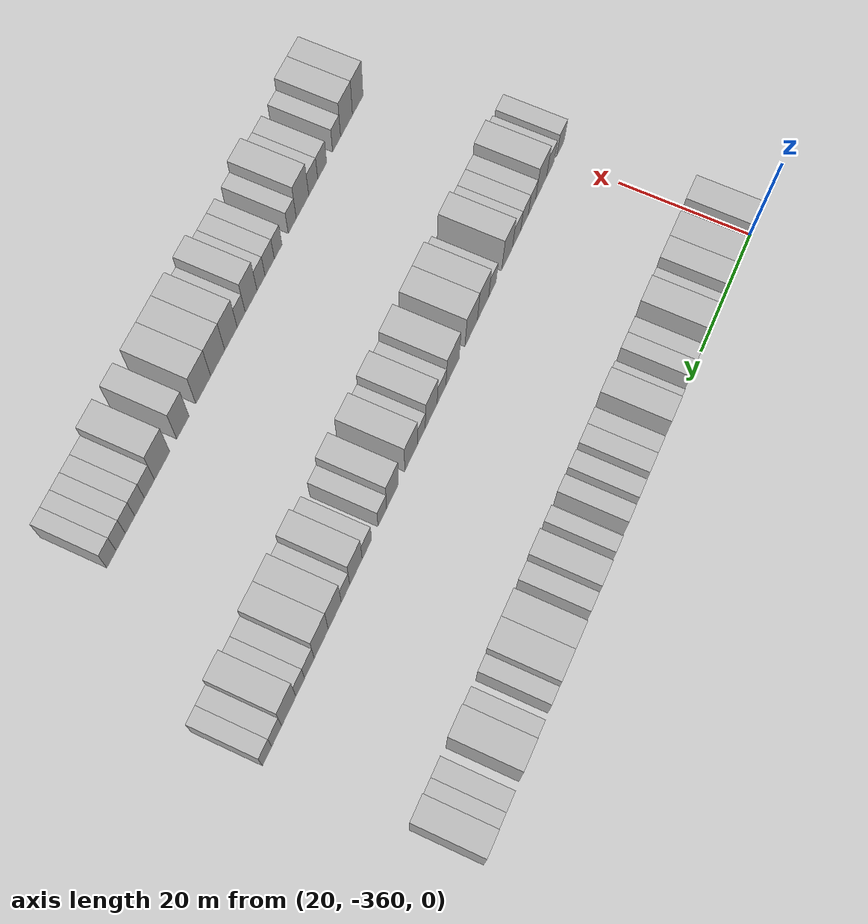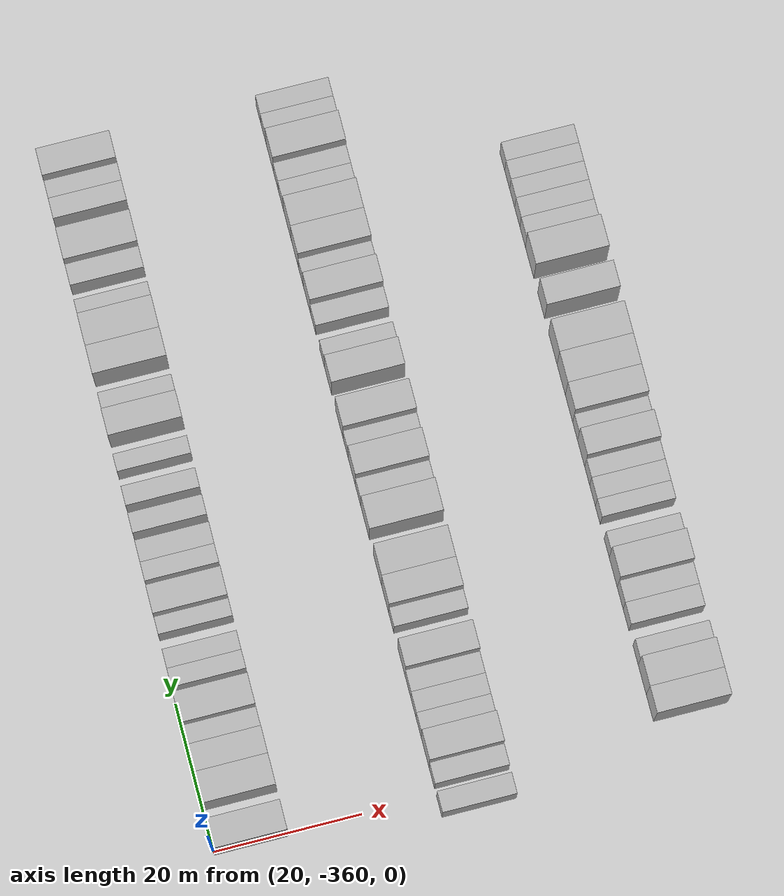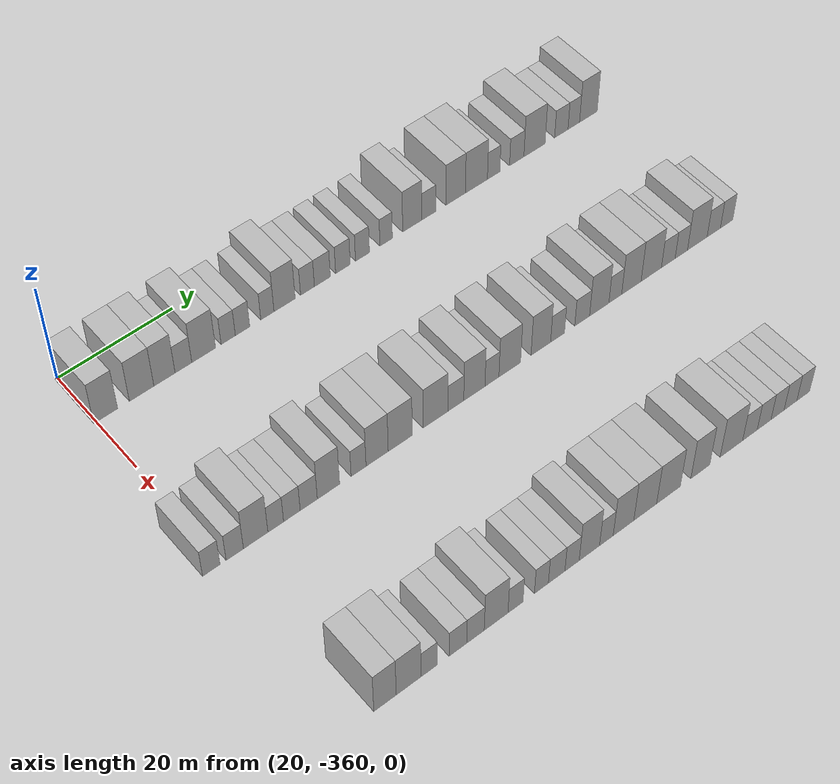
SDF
<sdf version="1.6">
 <world name="default">
  <model name="building_26">
   <static>1</static>
   <pose>25.0000 -358.4332 0 0.000000 0.000000 0.000000</pose>
   <link name="link">
    <pose>0 0 4.50 0 0 0</pose>
    <collision name="collision"><geometry><box><size>10.0000 4.0277 9.0000</size></box></geometry></collision>
    <visual name="visual">
     <cast_shadows>0</cast_shadows>
     <geometry><box><size>10.0000 4.0277 9.0000</size></box></geometry>
     <material>
      <script>
       <uri>model://HANNAS_wall/materials/scripts</uri>
       <uri>model://HANNAS_wall/materials/textures</uri>
       <name>vrc/HANNAS_wall</name>
      </script>
     </material>
    </visual>
   </link>
  </model>
  <model name="building_27">
   <static>1</static>
   <pose>25.0000 -352.3200 0 0.000000 0.000000 0.000000</pose>
   <link name="link">
    <pose>0 0 4.50 0 0 0</pose>
    <collision name="collision"><geometry><box><size>10.0000 4.1987 9.0000</size></box></geometry></collision>
    <visual name="visual">
     <cast_shadows>0</cast_shadows>
     <geometry><box><size>10.0000 4.1987 9.0000</size></box></geometry>
     <material>
      <script>
       <uri>model://HANNAS_wall/materials/scripts</uri>
       <uri>model://HANNAS_wall/materials/textures</uri>
       <name>vrc/HANNAS_wall</name>
      </script>
     </material>
    </visual>
   </link>
  </model>
  <model name="building_28">
   <static>1</static>
   <pose>25.0000 -348.3861 0 0.000000 0.000000 0.000000</pose>
   <link name="link">
    <pose>0 0 4.50 0 0 0</pose>
    <collision name="collision"><geometry><box><size>10.0000 3.6690 9.0000</size></box></geometry></collision>
    <visual name="visual">
     <cast_shadows>0</cast_shadows>
     <geometry><box><size>10.0000 3.6690 9.0000</size></box></geometry>
     <material>
      <script>
       <uri>model://HANNAS_wall/materials/scripts</uri>
       <uri>model://HANNAS_wall/materials/textures</uri>
       <name>vrc/HANNAS_wall</name>
      </script>
     </material>
    </visual>
   </link>
  </model>
  <model name="building_29">
   <static>1</static>
   <pose>25.0000 -345.0857 0 0.000000 0.000000 0.000000</pose>
   <link name="link">
    <pose>0 0 3.00 0 0 0</pose>
    <collision name="collision"><geometry><box><size>10.0000 2.9317 6.0000</size></box></geometry></collision>
    <visual name="visual">
     <cast_shadows>0</cast_shadows>
     <geometry><box><size>10.0000 2.9317 6.0000</size></box></geometry>
     <material>
      <script>
       <uri>model://HANNAS_wall/materials/scripts</uri>
       <uri>model://HANNAS_wall/materials/textures</uri>
       <name>vrc/HANNAS_wall</name>
      </script>
     </material>
    </visual>
   </link>
  </model>
  <model name="building_30">
   <static>1</static>
   <pose>25.0000 -341.5307 0 0.000000 0.000000 0.000000</pose>
   <link name="link">
    <pose>0 0 4.50 0 0 0</pose>
    <collision name="collision"><geometry><box><size>10.0000 4.1784 9.0000</size></box></geometry></collision>
    <visual name="visual">
     <cast_shadows>0</cast_shadows>
     <geometry><box><size>10.0000 4.1784 9.0000</size></box></geometry>
     <material>
      <script>
       <uri>model://HANNAS_wall/materials/scripts</uri>
       <uri>model://HANNAS_wall/materials/textures</uri>
       <name>vrc/HANNAS_wall</name>
      </script>
     </material>
    </visual>
   </link>
  </model>
  <model name="building_31">
   <static>1</static>
   <pose>25.0000 -337.1726 0 0.000000 0.000000 0.000000</pose>
   <link name="link">
    <pose>0 0 3.00 0 0 0</pose>
    <collision name="collision"><geometry><box><size>10.0000 2.5376 6.0000</size></box></geometry></collision>
    <visual name="visual">
     <cast_shadows>0</cast_shadows>
     <geometry><box><size>10.0000 2.5376 6.0000</size></box></geometry>
     <material>
      <script>
       <uri>model://HANNAS_wall/materials/scripts</uri>
       <uri>model://HANNAS_wall/materials/textures</uri>
       <name>vrc/HANNAS_wall</name>
      </script>
     </material>
    </visual>
   </link>
  </model>
  <model name="building_32">
   <static>1</static>
   <pose>25.0000 -334.6079 0 0.000000 0.000000 0.000000</pose>
   <link name="link">
    <pose>0 0 3.00 0 0 0</pose>
    <collision name="collision"><geometry><box><size>10.0000 2.5919 6.0000</size></box></geometry></collision>
    <visual name="visual">
     <cast_shadows>0</cast_shadows>
     <geometry><box><size>10.0000 2.5919 6.0000</size></box></geometry>
     <material>
      <script>
       <uri>model://HANNAS_wall/materials/scripts</uri>
       <uri>model://HANNAS_wall/materials/textures</uri>
       <name>vrc/HANNAS_wall</name>
      </script>
     </material>
    </visual>
   </link>
  </model>
  <model name="building_33">
   <static>1</static>
   <pose>25.0000 -330.1112 0 0.000000 0.000000 0.000000</pose>
   <link name="link">
    <pose>0 0 3.00 0 0 0</pose>
    <collision name="collision"><geometry><box><size>10.0000 2.4014 6.0000</size></box></geometry></collision>
    <visual name="visual">
     <cast_shadows>0</cast_shadows>
     <geometry><box><size>10.0000 2.4014 6.0000</size></box></geometry>
     <material>
      <script>
       <uri>model://HANNAS_wall/materials/scripts</uri>
       <uri>model://HANNAS_wall/materials/textures</uri>
       <name>vrc/HANNAS_wall</name>
      </script>
     </material>
    </visual>
   </link>
  </model>
  <model name="building_34">
   <static>1</static>
   <pose>25.0000 -326.9697 0 0.000000 0.000000 0.000000</pose>
   <link name="link">
    <pose>0 0 4.50 0 0 0</pose>
    <collision name="collision"><geometry><box><size>10.0000 3.8817 9.0000</size></box></geometry></collision>
    <visual name="visual">
     <cast_shadows>0</cast_shadows>
     <geometry><box><size>10.0000 3.8817 9.0000</size></box></geometry>
     <material>
      <script>
       <uri>model://HANNAS_wall/materials/scripts</uri>
       <uri>model://HANNAS_wall/materials/textures</uri>
       <name>vrc/HANNAS_wall</name>
      </script>
     </material>
    </visual>
   </link>
  </model>
  <model name="building_35">
   <static>1</static>
   <pose>25.0000 -322.7436 0 0.000000 0.000000 0.000000</pose>
   <link name="link">
    <pose>0 0 3.00 0 0 0</pose>
    <collision name="collision"><geometry><box><size>10.0000 2.5705 6.0000</size></box></geometry></collision>
    <visual name="visual">
     <cast_shadows>0</cast_shadows>
     <geometry><box><size>10.0000 2.5705 6.0000</size></box></geometry>
     <material>
      <script>
       <uri>model://HANNAS_wall/materials/scripts</uri>
       <uri>model://HANNAS_wall/materials/textures</uri>
       <name>vrc/HANNAS_wall</name>
      </script>
     </material>
    </visual>
   </link>
  </model>
  <model name="building_36">
   <static>1</static>
   <pose>25.0000 -319.9724 0 0.000000 0.000000 0.000000</pose>
   <link name="link">
    <pose>0 0 3.00 0 0 0</pose>
    <collision name="collision"><geometry><box><size>10.0000 2.9718 6.0000</size></box></geometry></collision>
    <visual name="visual">
     <cast_shadows>0</cast_shadows>
     <geometry><box><size>10.0000 2.9718 6.0000</size></box></geometry>
     <material>
      <script>
       <uri>model://HANNAS_wall/materials/scripts</uri>
       <uri>model://HANNAS_wall/materials/textures</uri>
       <name>vrc/HANNAS_wall</name>
      </script>
     </material>
    </visual>
   </link>
  </model>
  <model name="building_37">
   <static>1</static>
   <pose>25.0000 -316.1096 0 0.000000 0.000000 0.000000</pose>
   <link name="link">
    <pose>0 0 3.00 0 0 0</pose>
    <collision name="collision"><geometry><box><size>10.0000 2.7538 6.0000</size></box></geometry></collision>
    <visual name="visual">
     <cast_shadows>0</cast_shadows>
     <geometry><box><size>10.0000 2.7538 6.0000</size></box></geometry>
     <material>
      <script>
       <uri>model://HANNAS_wall/materials/scripts</uri>
       <uri>model://HANNAS_wall/materials/textures</uri>
       <name>vrc/HANNAS_wall</name>
      </script>
     </material>
    </visual>
   </link>
  </model>
  <model name="building_38">
   <static>1</static>
   <pose>25.0000 -312.4025 0 0.000000 0.000000 0.000000</pose>
   <link name="link">
    <pose>0 0 3.00 0 0 0</pose>
    <collision name="collision"><geometry><box><size>10.0000 2.6604 6.0000</size></box></geometry></collision>
    <visual name="visual">
     <cast_shadows>0</cast_shadows>
     <geometry><box><size>10.0000 2.6604 6.0000</size></box></geometry>
     <material>
      <script>
       <uri>model://HANNAS_wall/materials/scripts</uri>
       <uri>model://HANNAS_wall/materials/textures</uri>
       <name>vrc/HANNAS_wall</name>
      </script>
     </material>
    </visual>
   </link>
  </model>
  <model name="building_39">
   <static>1</static>
   <pose>25.0000 -307.8670 0 0.000000 0.000000 0.000000</pose>
   <link name="link">
    <pose>0 0 3.00 0 0 0</pose>
    <collision name="collision"><geometry><box><size>10.0000 2.4106 6.0000</size></box></geometry></collision>
    <visual name="visual">
     <cast_shadows>0</cast_shadows>
     <geometry><box><size>10.0000 2.4106 6.0000</size></box></geometry>
     <material>
      <script>
       <uri>model://HANNAS_wall/materials/scripts</uri>
       <uri>model://HANNAS_wall/materials/textures</uri>
       <name>vrc/HANNAS_wall</name>
      </script>
     </material>
    </visual>
   </link>
  </model>
  <model name="building_40">
   <static>1</static>
   <pose>25.0000 -302.8140 0 0.000000 0.000000 0.000000</pose>
   <link name="link">
    <pose>0 0 4.50 0 0 0</pose>
    <collision name="collision"><geometry><box><size>10.0000 3.6954 9.0000</size></box></geometry></collision>
    <visual name="visual">
     <cast_shadows>0</cast_shadows>
     <geometry><box><size>10.0000 3.6954 9.0000</size></box></geometry>
     <material>
      <script>
       <uri>model://HANNAS_wall/materials/scripts</uri>
       <uri>model://HANNAS_wall/materials/textures</uri>
       <name>vrc/HANNAS_wall</name>
      </script>
     </material>
    </visual>
   </link>
  </model>
  <model name="building_41">
   <static>1</static>
   <pose>25.0000 -299.5794 0 0.000000 0.000000 0.000000</pose>
   <link name="link">
    <pose>0 0 3.00 0 0 0</pose>
    <collision name="collision"><geometry><box><size>10.0000 2.7738 6.0000</size></box></geometry></collision>
    <visual name="visual">
     <cast_shadows>0</cast_shadows>
     <geometry><box><size>10.0000 2.7738 6.0000</size></box></geometry>
     <material>
      <script>
       <uri>model://HANNAS_wall/materials/scripts</uri>
       <uri>model://HANNAS_wall/materials/textures</uri>
       <name>vrc/HANNAS_wall</name>
      </script>
     </material>
    </visual>
   </link>
  </model>
  <model name="building_42">
   <static>1</static>
   <pose>25.0000 -294.2375 0 0.000000 0.000000 0.000000</pose>
   <link name="link">
    <pose>0 0 4.50 0 0 0</pose>
    <collision name="collision"><geometry><box><size>10.0000 3.9100 9.0000</size></box></geometry></collision>
    <visual name="visual">
     <cast_shadows>0</cast_shadows>
     <geometry><box><size>10.0000 3.9100 9.0000</size></box></geometry>
     <material>
      <script>
       <uri>model://HANNAS_wall/materials/scripts</uri>
       <uri>model://HANNAS_wall/materials/textures</uri>
       <name>vrc/HANNAS_wall</name>
      </script>
     </material>
    </visual>
   </link>
  </model>
  <model name="building_43">
   <static>1</static>
   <pose>25.0000 -290.0535 0 0.000000 0.000000 0.000000</pose>
   <link name="link">
    <pose>0 0 4.50 0 0 0</pose>
    <collision name="collision"><geometry><box><size>10.0000 4.4580 9.0000</size></box></geometry></collision>
    <visual name="visual">
     <cast_shadows>0</cast_shadows>
     <geometry><box><size>10.0000 4.4580 9.0000</size></box></geometry>
     <material>
      <script>
       <uri>model://HANNAS_wall/materials/scripts</uri>
       <uri>model://HANNAS_wall/materials/textures</uri>
       <name>vrc/HANNAS_wall</name>
      </script>
     </material>
    </visual>
   </link>
  </model>
  <model name="building_44">
   <static>1</static>
   <pose>25.0000 -286.5619 0 0.000000 0.000000 0.000000</pose>
   <link name="link">
    <pose>0 0 3.00 0 0 0</pose>
    <collision name="collision"><geometry><box><size>10.0000 2.5252 6.0000</size></box></geometry></collision>
    <visual name="visual">
     <cast_shadows>0</cast_shadows>
     <geometry><box><size>10.0000 2.5252 6.0000</size></box></geometry>
     <material>
      <script>
       <uri>model://HANNAS_wall/materials/scripts</uri>
       <uri>model://HANNAS_wall/materials/textures</uri>
       <name>vrc/HANNAS_wall</name>
      </script>
     </material>
    </visual>
   </link>
  </model>
  <model name="building_45">
   <static>1</static>
   <pose>25.0000 -281.8241 0 0.000000 0.000000 0.000000</pose>
   <link name="link">
    <pose>0 0 3.00 0 0 0</pose>
    <collision name="collision"><geometry><box><size>10.0000 2.9503 6.0000</size></box></geometry></collision>
    <visual name="visual">
     <cast_shadows>0</cast_shadows>
     <geometry><box><size>10.0000 2.9503 6.0000</size></box></geometry>
     <material>
      <script>
       <uri>model://HANNAS_wall/materials/scripts</uri>
       <uri>model://HANNAS_wall/materials/textures</uri>
       <name>vrc/HANNAS_wall</name>
      </script>
     </material>
    </visual>
   </link>
  </model>
  <model name="building_46">
   <static>1</static>
   <pose>25.0000 -278.1454 0 0.000000 0.000000 0.000000</pose>
   <link name="link">
    <pose>0 0 4.50 0 0 0</pose>
    <collision name="collision"><geometry><box><size>10.0000 4.4072 9.0000</size></box></geometry></collision>
    <visual name="visual">
     <cast_shadows>0</cast_shadows>
     <geometry><box><size>10.0000 4.4072 9.0000</size></box></geometry>
     <material>
      <script>
       <uri>model://HANNAS_wall/materials/scripts</uri>
       <uri>model://HANNAS_wall/materials/textures</uri>
       <name>vrc/HANNAS_wall</name>
      </script>
     </material>
    </visual>
   </link>
  </model>
  <model name="building_47">
   <static>1</static>
   <pose>25.0000 -272.5321 0 0.000000 0.000000 0.000000</pose>
   <link name="link">
    <pose>0 0 3.00 0 0 0</pose>
    <collision name="collision"><geometry><box><size>10.0000 2.8193 6.0000</size></box></geometry></collision>
    <visual name="visual">
     <cast_shadows>0</cast_shadows>
     <geometry><box><size>10.0000 2.8193 6.0000</size></box></geometry>
     <material>
      <script>
       <uri>model://HANNAS_wall/materials/scripts</uri>
       <uri>model://HANNAS_wall/materials/textures</uri>
       <name>vrc/HANNAS_wall</name>
      </script>
     </material>
    </visual>
   </link>
  </model>
  <model name="building_48">
   <static>1</static>
   <pose>25.0000 -269.8958 0 0.000000 0.000000 0.000000</pose>
   <link name="link">
    <pose>0 0 3.00 0 0 0</pose>
    <collision name="collision"><geometry><box><size>10.0000 2.4534 6.0000</size></box></geometry></collision>
    <visual name="visual">
     <cast_shadows>0</cast_shadows>
     <geometry><box><size>10.0000 2.4534 6.0000</size></box></geometry>
     <material>
      <script>
       <uri>model://HANNAS_wall/materials/scripts</uri>
       <uri>model://HANNAS_wall/materials/textures</uri>
       <name>vrc/HANNAS_wall</name>
      </script>
     </material>
    </visual>
   </link>
  </model>
  <model name="building_49">
   <static>1</static>
   <pose>25.0000 -266.7919 0 0.000000 0.000000 0.000000</pose>
   <link name="link">
    <pose>0 0 4.50 0 0 0</pose>
    <collision name="collision"><geometry><box><size>10.0000 3.7544 9.0000</size></box></geometry></collision>
    <visual name="visual">
     <cast_shadows>0</cast_shadows>
     <geometry><box><size>10.0000 3.7544 9.0000</size></box></geometry>
     <material>
      <script>
       <uri>model://HANNAS_wall/materials/scripts</uri>
       <uri>model://HANNAS_wall/materials/textures</uri>
       <name>vrc/HANNAS_wall</name>
      </script>
     </material>
    </visual>
   </link>
  </model>
  <model name="building_259">
   <static>1</static>
   <pose>55.0000 -361.6437 0 0.000000 0.000000 0.000000</pose>
   <link name="link">
    <pose>0 0 3.00 0 0 0</pose>
    <collision name="collision"><geometry><box><size>10.0000 2.8631 6.0000</size></box></geometry></collision>
    <visual name="visual">
     <cast_shadows>0</cast_shadows>
     <geometry><box><size>10.0000 2.8631 6.0000</size></box></geometry>
     <material>
      <script>
       <uri>model://HANNAS_wall/materials/scripts</uri>
       <uri>model://HANNAS_wall/materials/textures</uri>
       <name>vrc/HANNAS_wall</name>
      </script>
     </material>
    </visual>
   </link>
  </model>
  <model name="building_260">
   <static>1</static>
   <pose>55.0000 -357.7803 0 0.000000 0.000000 0.000000</pose>
   <link name="link">
    <pose>0 0 3.00 0 0 0</pose>
    <collision name="collision"><geometry><box><size>10.0000 2.8637 6.0000</size></box></geometry></collision>
    <visual name="visual">
     <cast_shadows>0</cast_shadows>
     <geometry><box><size>10.0000 2.8637 6.0000</size></box></geometry>
     <material>
      <script>
       <uri>model://HANNAS_wall/materials/scripts</uri>
       <uri>model://HANNAS_wall/materials/textures</uri>
       <name>vrc/HANNAS_wall</name>
      </script>
     </material>
    </visual>
   </link>
  </model>
  <model name="building_261">
   <static>1</static>
   <pose>55.0000 -354.3079 0 0.000000 0.000000 0.000000</pose>
   <link name="link">
    <pose>0 0 4.50 0 0 0</pose>
    <collision name="collision"><geometry><box><size>10.0000 4.0812 9.0000</size></box></geometry></collision>
    <visual name="visual">
     <cast_shadows>0</cast_shadows>
     <geometry><box><size>10.0000 4.0812 9.0000</size></box></geometry>
     <material>
      <script>
       <uri>model://HANNAS_wall/materials/scripts</uri>
       <uri>model://HANNAS_wall/materials/textures</uri>
       <name>vrc/HANNAS_wall</name>
      </script>
     </material>
    </visual>
   </link>
  </model>
  <model name="building_262">
   <static>1</static>
   <pose>55.0000 -350.9455 0 0.000000 0.000000 0.000000</pose>
   <link name="link">
    <pose>0 0 3.00 0 0 0</pose>
    <collision name="collision"><geometry><box><size>10.0000 2.6436 6.0000</size></box></geometry></collision>
    <visual name="visual">
     <cast_shadows>0</cast_shadows>
     <geometry><box><size>10.0000 2.6436 6.0000</size></box></geometry>
     <material>
      <script>
       <uri>model://HANNAS_wall/materials/scripts</uri>
       <uri>model://HANNAS_wall/materials/textures</uri>
       <name>vrc/HANNAS_wall</name>
      </script>
     </material>
    </visual>
   </link>
  </model>
  <model name="building_263">
   <static>1</static>
   <pose>55.0000 -348.2156 0 0.000000 0.000000 0.000000</pose>
   <link name="link">
    <pose>0 0 3.00 0 0 0</pose>
    <collision name="collision"><geometry><box><size>10.0000 2.8163 6.0000</size></box></geometry></collision>
    <visual name="visual">
     <cast_shadows>0</cast_shadows>
     <geometry><box><size>10.0000 2.8163 6.0000</size></box></geometry>
     <material>
      <script>
       <uri>model://HANNAS_wall/materials/scripts</uri>
       <uri>model://HANNAS_wall/materials/textures</uri>
       <name>vrc/HANNAS_wall</name>
      </script>
     </material>
    </visual>
   </link>
  </model>
  <model name="building_264">
   <static>1</static>
   <pose>55.0000 -345.3443 0 0.000000 0.000000 0.000000</pose>
   <link name="link">
    <pose>0 0 3.00 0 0 0</pose>
    <collision name="collision"><geometry><box><size>10.0000 2.9262 6.0000</size></box></geometry></collision>
    <visual name="visual">
     <cast_shadows>0</cast_shadows>
     <geometry><box><size>10.0000 2.9262 6.0000</size></box></geometry>
     <material>
      <script>
       <uri>model://HANNAS_wall/materials/scripts</uri>
       <uri>model://HANNAS_wall/materials/textures</uri>
       <name>vrc/HANNAS_wall</name>
      </script>
     </material>
    </visual>
   </link>
  </model>
  <model name="building_265">
   <static>1</static>
   <pose>55.0000 -341.9503 0 0.000000 0.000000 0.000000</pose>
   <link name="link">
    <pose>0 0 4.50 0 0 0</pose>
    <collision name="collision"><geometry><box><size>10.0000 3.8618 9.0000</size></box></geometry></collision>
    <visual name="visual">
     <cast_shadows>0</cast_shadows>
     <geometry><box><size>10.0000 3.8618 9.0000</size></box></geometry>
     <material>
      <script>
       <uri>model://HANNAS_wall/materials/scripts</uri>
       <uri>model://HANNAS_wall/materials/textures</uri>
       <name>vrc/HANNAS_wall</name>
      </script>
     </material>
    </visual>
   </link>
  </model>
  <model name="building_266">
   <static>1</static>
   <pose>55.0000 -336.7091 0 0.000000 0.000000 0.000000</pose>
   <link name="link">
    <pose>0 0 3.00 0 0 0</pose>
    <collision name="collision"><geometry><box><size>10.0000 2.6208 6.0000</size></box></geometry></collision>
    <visual name="visual">
     <cast_shadows>0</cast_shadows>
     <geometry><box><size>10.0000 2.6208 6.0000</size></box></geometry>
     <material>
      <script>
       <uri>model://HANNAS_wall/materials/scripts</uri>
       <uri>model://HANNAS_wall/materials/textures</uri>
       <name>vrc/HANNAS_wall</name>
      </script>
     </material>
    </visual>
   </link>
  </model>
  <model name="building_267">
   <static>1</static>
   <pose>55.0000 -333.4366 0 0.000000 0.000000 0.000000</pose>
   <link name="link">
    <pose>0 0 4.50 0 0 0</pose>
    <collision name="collision"><geometry><box><size>10.0000 3.9242 9.0000</size></box></geometry></collision>
    <visual name="visual">
     <cast_shadows>0</cast_shadows>
     <geometry><box><size>10.0000 3.9242 9.0000</size></box></geometry>
     <material>
      <script>
       <uri>model://HANNAS_wall/materials/scripts</uri>
       <uri>model://HANNAS_wall/materials/textures</uri>
       <name>vrc/HANNAS_wall</name>
      </script>
     </material>
    </visual>
   </link>
  </model>
  <model name="building_268">
   <static>1</static>
   <pose>55.0000 -329.3257 0 0.000000 0.000000 0.000000</pose>
   <link name="link">
    <pose>0 0 4.50 0 0 0</pose>
    <collision name="collision"><geometry><box><size>10.0000 4.2975 9.0000</size></box></geometry></collision>
    <visual name="visual">
     <cast_shadows>0</cast_shadows>
     <geometry><box><size>10.0000 4.2975 9.0000</size></box></geometry>
     <material>
      <script>
       <uri>model://HANNAS_wall/materials/scripts</uri>
       <uri>model://HANNAS_wall/materials/textures</uri>
       <name>vrc/HANNAS_wall</name>
      </script>
     </material>
    </visual>
   </link>
  </model>
  <model name="building_269">
   <static>1</static>
   <pose>55.0000 -322.9412 0 0.000000 0.000000 0.000000</pose>
   <link name="link">
    <pose>0 0 4.50 0 0 0</pose>
    <collision name="collision"><geometry><box><size>10.0000 4.4714 9.0000</size></box></geometry></collision>
    <visual name="visual">
     <cast_shadows>0</cast_shadows>
     <geometry><box><size>10.0000 4.4714 9.0000</size></box></geometry>
     <material>
      <script>
       <uri>model://HANNAS_wall/materials/scripts</uri>
       <uri>model://HANNAS_wall/materials/textures</uri>
       <name>vrc/HANNAS_wall</name>
      </script>
     </material>
    </visual>
   </link>
  </model>
  <model name="building_270">
   <static>1</static>
   <pose>55.0000 -319.2391 0 0.000000 0.000000 0.000000</pose>
   <link name="link">
    <pose>0 0 3.00 0 0 0</pose>
    <collision name="collision"><geometry><box><size>10.0000 2.9329 6.0000</size></box></geometry></collision>
    <visual name="visual">
     <cast_shadows>0</cast_shadows>
     <geometry><box><size>10.0000 2.9329 6.0000</size></box></geometry>
     <material>
      <script>
       <uri>model://HANNAS_wall/materials/scripts</uri>
       <uri>model://HANNAS_wall/materials/textures</uri>
       <name>vrc/HANNAS_wall</name>
      </script>
     </material>
    </visual>
   </link>
  </model>
  <model name="building_271">
   <static>1</static>
   <pose>55.0000 -315.8004 0 0.000000 0.000000 0.000000</pose>
   <link name="link">
    <pose>0 0 4.50 0 0 0</pose>
    <collision name="collision"><geometry><box><size>10.0000 3.9445 9.0000</size></box></geometry></collision>
    <visual name="visual">
     <cast_shadows>0</cast_shadows>
     <geometry><box><size>10.0000 3.9445 9.0000</size></box></geometry>
     <material>
      <script>
       <uri>model://HANNAS_wall/materials/scripts</uri>
       <uri>model://HANNAS_wall/materials/textures</uri>
       <name>vrc/HANNAS_wall</name>
      </script>
     </material>
    </visual>
   </link>
  </model>
  <model name="building_272">
   <static>1</static>
   <pose>55.0000 -312.5193 0 0.000000 0.000000 0.000000</pose>
   <link name="link">
    <pose>0 0 3.00 0 0 0</pose>
    <collision name="collision"><geometry><box><size>10.0000 2.6176 6.0000</size></box></geometry></collision>
    <visual name="visual">
     <cast_shadows>0</cast_shadows>
     <geometry><box><size>10.0000 2.6176 6.0000</size></box></geometry>
     <material>
      <script>
       <uri>model://HANNAS_wall/materials/scripts</uri>
       <uri>model://HANNAS_wall/materials/textures</uri>
       <name>vrc/HANNAS_wall</name>
      </script>
     </material>
    </visual>
   </link>
  </model>
  <model name="building_273">
   <static>1</static>
   <pose>55.0000 -309.1634 0 0.000000 0.000000 0.000000</pose>
   <link name="link">
    <pose>0 0 4.50 0 0 0</pose>
    <collision name="collision"><geometry><box><size>10.0000 4.0942 9.0000</size></box></geometry></collision>
    <visual name="visual">
     <cast_shadows>0</cast_shadows>
     <geometry><box><size>10.0000 4.0942 9.0000</size></box></geometry>
     <material>
      <script>
       <uri>model://HANNAS_wall/materials/scripts</uri>
       <uri>model://HANNAS_wall/materials/textures</uri>
       <name>vrc/HANNAS_wall</name>
      </script>
     </material>
    </visual>
   </link>
  </model>
  <model name="building_274">
   <static>1</static>
   <pose>55.0000 -303.2331 0 0.000000 0.000000 0.000000</pose>
   <link name="link">
    <pose>0 0 4.50 0 0 0</pose>
    <collision name="collision"><geometry><box><size>10.0000 3.7665 9.0000</size></box></geometry></collision>
    <visual name="visual">
     <cast_shadows>0</cast_shadows>
     <geometry><box><size>10.0000 3.7665 9.0000</size></box></geometry>
     <material>
      <script>
       <uri>model://HANNAS_wall/materials/scripts</uri>
       <uri>model://HANNAS_wall/materials/textures</uri>
       <name>vrc/HANNAS_wall</name>
      </script>
     </material>
    </visual>
   </link>
  </model>
  <model name="building_275">
   <static>1</static>
   <pose>55.0000 -300.0002 0 0.000000 0.000000 0.000000</pose>
   <link name="link">
    <pose>0 0 3.00 0 0 0</pose>
    <collision name="collision"><geometry><box><size>10.0000 2.6992 6.0000</size></box></geometry></collision>
    <visual name="visual">
     <cast_shadows>0</cast_shadows>
     <geometry><box><size>10.0000 2.6992 6.0000</size></box></geometry>
     <material>
      <script>
       <uri>model://HANNAS_wall/materials/scripts</uri>
       <uri>model://HANNAS_wall/materials/textures</uri>
       <name>vrc/HANNAS_wall</name>
      </script>
     </material>
    </visual>
   </link>
  </model>
  <model name="building_276">
   <static>1</static>
   <pose>55.0000 -295.1924 0 0.000000 0.000000 0.000000</pose>
   <link name="link">
    <pose>0 0 3.00 0 0 0</pose>
    <collision name="collision"><geometry><box><size>10.0000 2.9165 6.0000</size></box></geometry></collision>
    <visual name="visual">
     <cast_shadows>0</cast_shadows>
     <geometry><box><size>10.0000 2.9165 6.0000</size></box></geometry>
     <material>
      <script>
       <uri>model://HANNAS_wall/materials/scripts</uri>
       <uri>model://HANNAS_wall/materials/textures</uri>
       <name>vrc/HANNAS_wall</name>
      </script>
     </material>
    </visual>
   </link>
  </model>
  <model name="building_277">
   <static>1</static>
   <pose>55.0000 -291.8212 0 0.000000 0.000000 0.000000</pose>
   <link name="link">
    <pose>0 0 4.50 0 0 0</pose>
    <collision name="collision"><geometry><box><size>10.0000 3.8258 9.0000</size></box></geometry></collision>
    <visual name="visual">
     <cast_shadows>0</cast_shadows>
     <geometry><box><size>10.0000 3.8258 9.0000</size></box></geometry>
     <material>
      <script>
       <uri>model://HANNAS_wall/materials/scripts</uri>
       <uri>model://HANNAS_wall/materials/textures</uri>
       <name>vrc/HANNAS_wall</name>
      </script>
     </material>
    </visual>
   </link>
  </model>
  <model name="building_278">
   <static>1</static>
   <pose>55.0000 -288.6280 0 0.000000 0.000000 0.000000</pose>
   <link name="link">
    <pose>0 0 3.00 0 0 0</pose>
    <collision name="collision"><geometry><box><size>10.0000 2.5608 6.0000</size></box></geometry></collision>
    <visual name="visual">
     <cast_shadows>0</cast_shadows>
     <geometry><box><size>10.0000 2.5608 6.0000</size></box></geometry>
     <material>
      <script>
       <uri>model://HANNAS_wall/materials/scripts</uri>
       <uri>model://HANNAS_wall/materials/textures</uri>
       <name>vrc/HANNAS_wall</name>
      </script>
     </material>
    </visual>
   </link>
  </model>
  <model name="building_279">
   <static>1</static>
   <pose>55.0000 -285.3864 0 0.000000 0.000000 0.000000</pose>
   <link name="link">
    <pose>0 0 4.50 0 0 0</pose>
    <collision name="collision"><geometry><box><size>10.0000 3.9223 9.0000</size></box></geometry></collision>
    <visual name="visual">
     <cast_shadows>0</cast_shadows>
     <geometry><box><size>10.0000 3.9223 9.0000</size></box></geometry>
     <material>
      <script>
       <uri>model://HANNAS_wall/materials/scripts</uri>
       <uri>model://HANNAS_wall/materials/textures</uri>
       <name>vrc/HANNAS_wall</name>
      </script>
     </material>
    </visual>
   </link>
  </model>
  <model name="building_280">
   <static>1</static>
   <pose>55.0000 -281.3484 0 0.000000 0.000000 0.000000</pose>
   <link name="link">
    <pose>0 0 4.50 0 0 0</pose>
    <collision name="collision"><geometry><box><size>10.0000 4.1538 9.0000</size></box></geometry></collision>
    <visual name="visual">
     <cast_shadows>0</cast_shadows>
     <geometry><box><size>10.0000 4.1538 9.0000</size></box></geometry>
     <material>
      <script>
       <uri>model://HANNAS_wall/materials/scripts</uri>
       <uri>model://HANNAS_wall/materials/textures</uri>
       <name>vrc/HANNAS_wall</name>
      </script>
     </material>
    </visual>
   </link>
  </model>
  <model name="building_281">
   <static>1</static>
   <pose>55.0000 -277.8653 0 0.000000 0.000000 0.000000</pose>
   <link name="link">
    <pose>0 0 3.00 0 0 0</pose>
    <collision name="collision"><geometry><box><size>10.0000 2.8124 6.0000</size></box></geometry></collision>
    <visual name="visual">
     <cast_shadows>0</cast_shadows>
     <geometry><box><size>10.0000 2.8124 6.0000</size></box></geometry>
     <material>
      <script>
       <uri>model://HANNAS_wall/materials/scripts</uri>
       <uri>model://HANNAS_wall/materials/textures</uri>
       <name>vrc/HANNAS_wall</name>
      </script>
     </material>
    </visual>
   </link>
  </model>
  <model name="building_282">
   <static>1</static>
   <pose>55.0000 -275.1806 0 0.000000 0.000000 0.000000</pose>
   <link name="link">
    <pose>0 0 3.00 0 0 0</pose>
    <collision name="collision"><geometry><box><size>10.0000 2.5570 6.0000</size></box></geometry></collision>
    <visual name="visual">
     <cast_shadows>0</cast_shadows>
     <geometry><box><size>10.0000 2.5570 6.0000</size></box></geometry>
     <material>
      <script>
       <uri>model://HANNAS_wall/materials/scripts</uri>
       <uri>model://HANNAS_wall/materials/textures</uri>
       <name>vrc/HANNAS_wall</name>
      </script>
     </material>
    </visual>
   </link>
  </model>
  <model name="building_283">
   <static>1</static>
   <pose>55.0000 -271.8552 0 0.000000 0.000000 0.000000</pose>
   <link name="link">
    <pose>0 0 4.50 0 0 0</pose>
    <collision name="collision"><geometry><box><size>10.0000 4.0938 9.0000</size></box></geometry></collision>
    <visual name="visual">
     <cast_shadows>0</cast_shadows>
     <geometry><box><size>10.0000 4.0938 9.0000</size></box></geometry>
     <material>
      <script>
       <uri>model://HANNAS_wall/materials/scripts</uri>
       <uri>model://HANNAS_wall/materials/textures</uri>
       <name>vrc/HANNAS_wall</name>
      </script>
     </material>
    </visual>
   </link>
  </model>
  <model name="building_284">
   <static>1</static>
   <pose>55.0000 -268.4005 0 0.000000 0.000000 0.000000</pose>
   <link name="link">
    <pose>0 0 3.00 0 0 0</pose>
    <collision name="collision"><geometry><box><size>10.0000 2.8156 6.0000</size></box></geometry></collision>
    <visual name="visual">
     <cast_shadows>0</cast_shadows>
     <geometry><box><size>10.0000 2.8156 6.0000</size></box></geometry>
     <material>
      <script>
       <uri>model://HANNAS_wall/materials/scripts</uri>
       <uri>model://HANNAS_wall/materials/textures</uri>
       <name>vrc/HANNAS_wall</name>
      </script>
     </material>
    </visual>
   </link>
  </model>
  <model name="building_285">
   <static>1</static>
   <pose>55.0000 -265.6816 0 0.000000 0.000000 0.000000</pose>
   <link name="link">
    <pose>0 0 3.00 0 0 0</pose>
    <collision name="collision"><geometry><box><size>10.0000 2.6222 6.0000</size></box></geometry></collision>
    <visual name="visual">
     <cast_shadows>0</cast_shadows>
     <geometry><box><size>10.0000 2.6222 6.0000</size></box></geometry>
     <material>
      <script>
       <uri>model://HANNAS_wall/materials/scripts</uri>
       <uri>model://HANNAS_wall/materials/textures</uri>
       <name>vrc/HANNAS_wall</name>
      </script>
     </material>
    </visual>
   </link>
  </model>
  <model name="building_488">
   <static>1</static>
   <pose>85.0000 -356.0056 0 0.000000 0.000000 0.000000</pose>
   <link name="link">
    <pose>0 0 4.50 0 0 0</pose>
    <collision name="collision"><geometry><box><size>10.0000 3.6419 9.0000</size></box></geometry></collision>
    <visual name="visual">
     <cast_shadows>0</cast_shadows>
     <geometry><box><size>10.0000 3.6419 9.0000</size></box></geometry>
     <material>
      <script>
       <uri>model://HANNAS_wall/materials/scripts</uri>
       <uri>model://HANNAS_wall/materials/textures</uri>
       <name>vrc/HANNAS_wall</name>
      </script>
     </material>
    </visual>
   </link>
  </model>
  <model name="building_489">
   <static>1</static>
   <pose>85.0000 -352.1511 0 0.000000 0.000000 0.000000</pose>
   <link name="link">
    <pose>0 0 4.50 0 0 0</pose>
    <collision name="collision"><geometry><box><size>10.0000 4.0670 9.0000</size></box></geometry></collision>
    <visual name="visual">
     <cast_shadows>0</cast_shadows>
     <geometry><box><size>10.0000 4.0670 9.0000</size></box></geometry>
     <material>
      <script>
       <uri>model://HANNAS_wall/materials/scripts</uri>
       <uri>model://HANNAS_wall/materials/textures</uri>
       <name>vrc/HANNAS_wall</name>
      </script>
     </material>
    </visual>
   </link>
  </model>
  <model name="building_490">
   <static>1</static>
   <pose>85.0000 -348.7660 0 0.000000 0.000000 0.000000</pose>
   <link name="link">
    <pose>0 0 3.00 0 0 0</pose>
    <collision name="collision"><geometry><box><size>10.0000 2.7033 6.0000</size></box></geometry></collision>
    <visual name="visual">
     <cast_shadows>0</cast_shadows>
     <geometry><box><size>10.0000 2.7033 6.0000</size></box></geometry>
     <material>
      <script>
       <uri>model://HANNAS_wall/materials/scripts</uri>
       <uri>model://HANNAS_wall/materials/textures</uri>
       <name>vrc/HANNAS_wall</name>
      </script>
     </material>
    </visual>
   </link>
  </model>
  <model name="building_491">
   <static>1</static>
   <pose>85.0000 -343.9277 0 0.000000 0.000000 0.000000</pose>
   <link name="link">
    <pose>0 0 3.00 0 0 0</pose>
    <collision name="collision"><geometry><box><size>10.0000 2.9731 6.0000</size></box></geometry></collision>
    <visual name="visual">
     <cast_shadows>0</cast_shadows>
     <geometry><box><size>10.0000 2.9731 6.0000</size></box></geometry>
     <material>
      <script>
       <uri>model://HANNAS_wall/materials/scripts</uri>
       <uri>model://HANNAS_wall/materials/textures</uri>
       <name>vrc/HANNAS_wall</name>
      </script>
     </material>
    </visual>
   </link>
  </model>
  <model name="building_492">
   <static>1</static>
   <pose>85.0000 -340.9534 0 0.000000 0.000000 0.000000</pose>
   <link name="link">
    <pose>0 0 3.00 0 0 0</pose>
    <collision name="collision"><geometry><box><size>10.0000 2.9754 6.0000</size></box></geometry></collision>
    <visual name="visual">
     <cast_shadows>0</cast_shadows>
     <geometry><box><size>10.0000 2.9754 6.0000</size></box></geometry>
     <material>
      <script>
       <uri>model://HANNAS_wall/materials/scripts</uri>
       <uri>model://HANNAS_wall/materials/textures</uri>
       <name>vrc/HANNAS_wall</name>
      </script>
     </material>
    </visual>
   </link>
  </model>
  <model name="building_493">
   <static>1</static>
   <pose>85.0000 -337.4190 0 0.000000 0.000000 0.000000</pose>
   <link name="link">
    <pose>0 0 4.50 0 0 0</pose>
    <collision name="collision"><geometry><box><size>10.0000 4.0934 9.0000</size></box></geometry></collision>
    <visual name="visual">
     <cast_shadows>0</cast_shadows>
     <geometry><box><size>10.0000 4.0934 9.0000</size></box></geometry>
     <material>
      <script>
       <uri>model://HANNAS_wall/materials/scripts</uri>
       <uri>model://HANNAS_wall/materials/textures</uri>
       <name>vrc/HANNAS_wall</name>
      </script>
     </material>
    </visual>
   </link>
  </model>
  <model name="building_494">
   <static>1</static>
   <pose>85.0000 -334.0690 0 0.000000 0.000000 0.000000</pose>
   <link name="link">
    <pose>0 0 3.00 0 0 0</pose>
    <collision name="collision"><geometry><box><size>10.0000 2.6067 6.0000</size></box></geometry></collision>
    <visual name="visual">
     <cast_shadows>0</cast_shadows>
     <geometry><box><size>10.0000 2.6067 6.0000</size></box></geometry>
     <material>
      <script>
       <uri>model://HANNAS_wall/materials/scripts</uri>
       <uri>model://HANNAS_wall/materials/textures</uri>
       <name>vrc/HANNAS_wall</name>
      </script>
     </material>
    </visual>
   </link>
  </model>
  <model name="building_495">
   <static>1</static>
   <pose>85.0000 -329.5354 0 0.000000 0.000000 0.000000</pose>
   <link name="link">
    <pose>0 0 3.00 0 0 0</pose>
    <collision name="collision"><geometry><box><size>10.0000 2.4604 6.0000</size></box></geometry></collision>
    <visual name="visual">
     <cast_shadows>0</cast_shadows>
     <geometry><box><size>10.0000 2.4604 6.0000</size></box></geometry>
     <material>
      <script>
       <uri>model://HANNAS_wall/materials/scripts</uri>
       <uri>model://HANNAS_wall/materials/textures</uri>
       <name>vrc/HANNAS_wall</name>
      </script>
     </material>
    </visual>
   </link>
  </model>
  <model name="building_496">
   <static>1</static>
   <pose>85.0000 -326.8396 0 0.000000 0.000000 0.000000</pose>
   <link name="link">
    <pose>0 0 3.00 0 0 0</pose>
    <collision name="collision"><geometry><box><size>10.0000 2.9313 6.0000</size></box></geometry></collision>
    <visual name="visual">
     <cast_shadows>0</cast_shadows>
     <geometry><box><size>10.0000 2.9313 6.0000</size></box></geometry>
     <material>
      <script>
       <uri>model://HANNAS_wall/materials/scripts</uri>
       <uri>model://HANNAS_wall/materials/textures</uri>
       <name>vrc/HANNAS_wall</name>
      </script>
     </material>
    </visual>
   </link>
  </model>
  <model name="building_497">
   <static>1</static>
   <pose>85.0000 -324.0969 0 0.000000 0.000000 0.000000</pose>
   <link name="link">
    <pose>0 0 3.00 0 0 0</pose>
    <collision name="collision"><geometry><box><size>10.0000 2.5541 6.0000</size></box></geometry></collision>
    <visual name="visual">
     <cast_shadows>0</cast_shadows>
     <geometry><box><size>10.0000 2.5541 6.0000</size></box></geometry>
     <material>
      <script>
       <uri>model://HANNAS_wall/materials/scripts</uri>
       <uri>model://HANNAS_wall/materials/textures</uri>
       <name>vrc/HANNAS_wall</name>
      </script>
     </material>
    </visual>
   </link>
  </model>
  <model name="building_498">
   <static>1</static>
   <pose>85.0000 -320.9797 0 0.000000 0.000000 0.000000</pose>
   <link name="link">
    <pose>0 0 4.50 0 0 0</pose>
    <collision name="collision"><geometry><box><size>10.0000 3.6804 9.0000</size></box></geometry></collision>
    <visual name="visual">
     <cast_shadows>0</cast_shadows>
     <geometry><box><size>10.0000 3.6804 9.0000</size></box></geometry>
     <material>
      <script>
       <uri>model://HANNAS_wall/materials/scripts</uri>
       <uri>model://HANNAS_wall/materials/textures</uri>
       <name>vrc/HANNAS_wall</name>
      </script>
     </material>
    </visual>
   </link>
  </model>
  <model name="building_499">
   <static>1</static>
   <pose>85.0000 -317.8931 0 0.000000 0.000000 0.000000</pose>
   <link name="link">
    <pose>0 0 3.00 0 0 0</pose>
    <collision name="collision"><geometry><box><size>10.0000 2.4926 6.0000</size></box></geometry></collision>
    <visual name="visual">
     <cast_shadows>0</cast_shadows>
     <geometry><box><size>10.0000 2.4926 6.0000</size></box></geometry>
     <material>
      <script>
       <uri>model://HANNAS_wall/materials/scripts</uri>
       <uri>model://HANNAS_wall/materials/textures</uri>
       <name>vrc/HANNAS_wall</name>
      </script>
     </material>
    </visual>
   </link>
  </model>
  <model name="building_500">
   <static>1</static>
   <pose>85.0000 -314.7504 0 0.000000 0.000000 0.000000</pose>
   <link name="link">
    <pose>0 0 4.50 0 0 0</pose>
    <collision name="collision"><geometry><box><size>10.0000 3.7929 9.0000</size></box></geometry></collision>
    <visual name="visual">
     <cast_shadows>0</cast_shadows>
     <geometry><box><size>10.0000 3.7929 9.0000</size></box></geometry>
     <material>
      <script>
       <uri>model://HANNAS_wall/materials/scripts</uri>
       <uri>model://HANNAS_wall/materials/textures</uri>
       <name>vrc/HANNAS_wall</name>
      </script>
     </material>
    </visual>
   </link>
  </model>
  <model name="building_501">
   <static>1</static>
   <pose>85.0000 -310.7281 0 0.000000 0.000000 0.000000</pose>
   <link name="link">
    <pose>0 0 4.50 0 0 0</pose>
    <collision name="collision"><geometry><box><size>10.0000 4.2515 9.0000</size></box></geometry></collision>
    <visual name="visual">
     <cast_shadows>0</cast_shadows>
     <geometry><box><size>10.0000 4.2515 9.0000</size></box></geometry>
     <material>
      <script>
       <uri>model://HANNAS_wall/materials/scripts</uri>
       <uri>model://HANNAS_wall/materials/textures</uri>
       <name>vrc/HANNAS_wall</name>
      </script>
     </material>
    </visual>
   </link>
  </model>
  <model name="building_502">
   <static>1</static>
   <pose>85.0000 -306.3742 0 0.000000 0.000000 0.000000</pose>
   <link name="link">
    <pose>0 0 4.50 0 0 0</pose>
    <collision name="collision"><geometry><box><size>10.0000 4.4564 9.0000</size></box></geometry></collision>
    <visual name="visual">
     <cast_shadows>0</cast_shadows>
     <geometry><box><size>10.0000 4.4564 9.0000</size></box></geometry>
     <material>
      <script>
       <uri>model://HANNAS_wall/materials/scripts</uri>
       <uri>model://HANNAS_wall/materials/textures</uri>
       <name>vrc/HANNAS_wall</name>
      </script>
     </material>
    </visual>
   </link>
  </model>
  <model name="building_503">
   <static>1</static>
   <pose>85.0000 -300.3304 0 0.000000 0.000000 0.000000</pose>
   <link name="link">
    <pose>0 0 4.50 0 0 0</pose>
    <collision name="collision"><geometry><box><size>10.0000 3.6311 9.0000</size></box></geometry></collision>
    <visual name="visual">
     <cast_shadows>0</cast_shadows>
     <geometry><box><size>10.0000 3.6311 9.0000</size></box></geometry>
     <material>
      <script>
       <uri>model://HANNAS_wall/materials/scripts</uri>
       <uri>model://HANNAS_wall/materials/textures</uri>
       <name>vrc/HANNAS_wall</name>
      </script>
     </material>
    </visual>
   </link>
  </model>
  <model name="building_504">
   <static>1</static>
   <pose>85.0000 -294.3210 0 0.000000 0.000000 0.000000</pose>
   <link name="link">
    <pose>0 0 4.50 0 0 0</pose>
    <collision name="collision"><geometry><box><size>10.0000 4.3878 9.0000</size></box></geometry></collision>
    <visual name="visual">
     <cast_shadows>0</cast_shadows>
     <geometry><box><size>10.0000 4.3878 9.0000</size></box></geometry>
     <material>
      <script>
       <uri>model://HANNAS_wall/materials/scripts</uri>
       <uri>model://HANNAS_wall/materials/textures</uri>
       <name>vrc/HANNAS_wall</name>
      </script>
     </material>
    </visual>
   </link>
  </model>
  <model name="building_505">
   <static>1</static>
   <pose>85.0000 -290.6934 0 0.000000 0.000000 0.000000</pose>
   <link name="link">
    <pose>0 0 3.00 0 0 0</pose>
    <collision name="collision"><geometry><box><size>10.0000 2.8672 6.0000</size></box></geometry></collision>
    <visual name="visual">
     <cast_shadows>0</cast_shadows>
     <geometry><box><size>10.0000 2.8672 6.0000</size></box></geometry>
     <material>
      <script>
       <uri>model://HANNAS_wall/materials/scripts</uri>
       <uri>model://HANNAS_wall/materials/textures</uri>
       <name>vrc/HANNAS_wall</name>
      </script>
     </material>
    </visual>
   </link>
  </model>
  <model name="building_506">
   <static>1</static>
   <pose>85.0000 -287.8980 0 0.000000 0.000000 0.000000</pose>
   <link name="link">
    <pose>0 0 3.00 0 0 0</pose>
    <collision name="collision"><geometry><box><size>10.0000 2.7235 6.0000</size></box></geometry></collision>
    <visual name="visual">
     <cast_shadows>0</cast_shadows>
     <geometry><box><size>10.0000 2.7235 6.0000</size></box></geometry>
     <material>
      <script>
       <uri>model://HANNAS_wall/materials/scripts</uri>
       <uri>model://HANNAS_wall/materials/textures</uri>
       <name>vrc/HANNAS_wall</name>
      </script>
     </material>
    </visual>
   </link>
  </model>
  <model name="building_507">
   <static>1</static>
   <pose>85.0000 -285.2267 0 0.000000 0.000000 0.000000</pose>
   <link name="link">
    <pose>0 0 3.00 0 0 0</pose>
    <collision name="collision"><geometry><box><size>10.0000 2.6192 6.0000</size></box></geometry></collision>
    <visual name="visual">
     <cast_shadows>0</cast_shadows>
     <geometry><box><size>10.0000 2.6192 6.0000</size></box></geometry>
     <material>
      <script>
       <uri>model://HANNAS_wall/materials/scripts</uri>
       <uri>model://HANNAS_wall/materials/textures</uri>
       <name>vrc/HANNAS_wall</name>
      </script>
     </material>
    </visual>
   </link>
  </model>
  <model name="building_508">
   <static>1</static>
   <pose>85.0000 -282.6288 0 0.000000 0.000000 0.000000</pose>
   <link name="link">
    <pose>0 0 3.00 0 0 0</pose>
    <collision name="collision"><geometry><box><size>10.0000 2.5767 6.0000</size></box></geometry></collision>
    <visual name="visual">
     <cast_shadows>0</cast_shadows>
     <geometry><box><size>10.0000 2.5767 6.0000</size></box></geometry>
     <material>
      <script>
       <uri>model://HANNAS_wall/materials/scripts</uri>
       <uri>model://HANNAS_wall/materials/textures</uri>
       <name>vrc/HANNAS_wall</name>
      </script>
     </material>
    </visual>
   </link>
  </model>
  <model name="building_509">
   <static>1</static>
   <pose>85.0000 -280.0462 0 0.000000 0.000000 0.000000</pose>
   <link name="link">
    <pose>0 0 3.00 0 0 0</pose>
    <collision name="collision"><geometry><box><size>10.0000 2.5885 6.0000</size></box></geometry></collision>
    <visual name="visual">
     <cast_shadows>0</cast_shadows>
     <geometry><box><size>10.0000 2.5885 6.0000</size></box></geometry>
     <material>
      <script>
       <uri>model://HANNAS_wall/materials/scripts</uri>
       <uri>model://HANNAS_wall/materials/textures</uri>
       <name>vrc/HANNAS_wall</name>
      </script>
     </material>
    </visual>
   </link>
  </model>
 </world>
</sdf>
